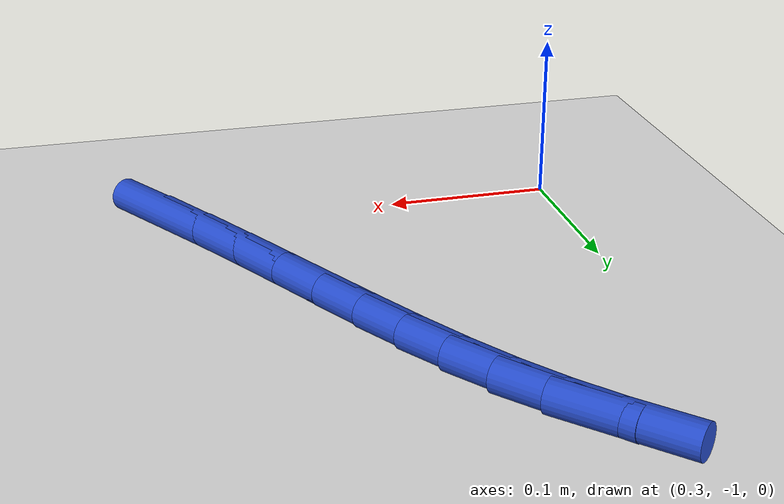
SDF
<sdf version="1.6">
 <world name="default">
  <model name="ground_plane">
   <static>1</static>
   <link name="link">
    <collision name="collision">
     <geometry><plane><normal>0 0 1</normal><size>100 100</size></plane></geometry>
     <surface><friction><ode><mu>100</mu><mu2>50</mu2></ode></friction></surface>
    </collision>
    <visual name="visual">
     <cast_shadows>0</cast_shadows>
     <geometry><plane><normal>0 0 1</normal><size>100 100</size></plane></geometry>
     <material>
      <script><uri>file://media/materials/scripts/gazebo.material</uri><name>Gazebo/WhiteGlow</name></script>
     </material>
    </visual>
   </link>
  </model>
  <model name="line">
   <link name="link_224">
    <pose>0.5436498472602482 -1.0012003150318798 0.01 0 1.57 -1.0277564110859871</pose>
    <collision name="collision">
     <geometry><cylinder><radius>0.01</radius><length>0.08</length></cylinder></geometry>
    </collision>
    <visual name="visual">
     <material>
      <script><name>Gazebo/Blue</name><uri>file://media/materials/scripts/gazebo.material</uri></script>
     </material>
     <geometry><cylinder><radius>0.01</radius><length>0.08</length></cylinder></geometry>
    </visual>
   </link>
   <link name="link_225">
    <pose>0.5237281199900922 -0.9681937912402606 0.01 0 1.57 -1.0497197092764141</pose>
    <collision name="collision">
     <geometry><cylinder><radius>0.01</radius><length>0.08</length></cylinder></geometry>
    </collision>
    <visual name="visual">
     <material>
      <script><name>Gazebo/Blue</name><uri>file://media/materials/scripts/gazebo.material</uri></script>
     </material>
     <geometry><cylinder><radius>0.01</radius><length>0.08</length></cylinder></geometry>
    </visual>
   </link>
   <link name="link_226">
    <pose>0.5046082611129576 -0.9348834842401947 0.01 0 1.57 -1.0638054505738495</pose>
    <collision name="collision">
     <geometry><cylinder><radius>0.01</radius><length>0.08</length></cylinder></geometry>
    </collision>
    <visual name="visual">
     <material>
      <script><name>Gazebo/Blue</name><uri>file://media/materials/scripts/gazebo.material</uri></script>
     </material>
     <geometry><cylinder><radius>0.01</radius><length>0.08</length></cylinder></geometry>
    </visual>
   </link>
   <link name="link_227">
    <pose>0.486288747996458 -0.901899999020813 0.01 0 1.57 -1.0702007520098977</pose>
    <collision name="collision">
     <geometry><cylinder><radius>0.01</radius><length>0.08</length></cylinder></geometry>
    </collision>
    <visual name="visual">
     <material>
      <script><name>Gazebo/Blue</name><uri>file://media/materials/scripts/gazebo.material</uri></script>
     </material>
     <geometry><cylinder><radius>0.01</radius><length>0.08</length></cylinder></geometry>
    </visual>
   </link>
   <link name="link_228">
    <pose>0.468768058008206 -0.8698739405712457 0.01 0 1.57 -1.0682481393169319</pose>
    <collision name="collision">
     <geometry><cylinder><radius>0.01</radius><length>0.08</length></cylinder></geometry>
    </collision>
    <visual name="visual">
     <material>
      <script><name>Gazebo/Blue</name><uri>file://media/materials/scripts/gazebo.material</uri></script>
     </material>
     <geometry><cylinder><radius>0.01</radius><length>0.08</length></cylinder></geometry>
    </visual>
   </link>
   <link name="link_229">
    <pose>0.4520197872733098 -0.839401252360744 0.01 0 1.57 -1.054748420763558</pose>
    <collision name="collision">
     <geometry><cylinder><radius>0.01</radius><length>0.08</length></cylinder></geometry>
    </collision>
    <visual name="visual">
     <material>
      <script><name>Gazebo/Blue</name><uri>file://media/materials/scripts/gazebo.material</uri></script>
     </material>
     <geometry><cylinder><radius>0.01</radius><length>0.08</length></cylinder></geometry>
    </visual>
   </link>
   <link name="link_230">
    <pose>0.43570117797464636 -0.8106371720354838 0.01 0 1.57 -1.026942826215819</pose>
    <collision name="collision">
     <geometry><cylinder><radius>0.01</radius><length>0.08</length></cylinder></geometry>
    </collision>
    <visual name="visual">
     <material>
      <script><name>Gazebo/Blue</name><uri>file://media/materials/scripts/gazebo.material</uri></script>
     </material>
     <geometry><cylinder><radius>0.01</radius><length>0.08</length></cylinder></geometry>
    </visual>
   </link>
   <link name="link_231">
    <pose>0.41925171633842706 -0.7834335861361178 0.01 0 1.57 -0.9842174823862494</pose>
    <collision name="collision">
     <geometry><cylinder><radius>0.01</radius><length>0.08</length></cylinder></geometry>
    </collision>
    <visual name="visual">
     <material>
      <script><name>Gazebo/Blue</name><uri>file://media/materials/scripts/gazebo.material</uri></script>
     </material>
     <geometry><cylinder><radius>0.01</radius><length>0.08</length></cylinder></geometry>
    </visual>
   </link>
   <link name="link_232">
    <pose>0.4021065933186352 -0.7576363975526157 0.01 0 1.57 -0.9273753459625957</pose>
    <collision name="collision">
     <geometry><cylinder><radius>0.01</radius><length>0.08</length></cylinder></geometry>
    </collision>
    <visual name="visual">
     <material>
      <script><name>Gazebo/Blue</name><uri>file://media/materials/scripts/gazebo.material</uri></script>
     </material>
     <geometry><cylinder><radius>0.01</radius><length>0.08</length></cylinder></geometry>
    </visual>
   </link>
   <link name="link_233">
    <pose>0.38370099986925404 -0.7330915091749473 0.01 0 1.57 -0.8615957768258157</pose>
    <collision name="collision">
     <geometry><cylinder><radius>0.01</radius><length>0.08</length></cylinder></geometry>
    </collision>
    <visual name="visual">
     <material>
      <script><name>Gazebo/Blue</name><uri>file://media/materials/scripts/gazebo.material</uri></script>
     </material>
     <geometry><cylinder><radius>0.01</radius><length>0.08</length></cylinder></geometry>
    </visual>
   </link>
   <link name="link_234">
    <pose>0.36357417014303056 -0.709637480206997 0.01 0 1.57 -0.8046199578321611</pose>
    <collision name="collision">
     <geometry><cylinder><radius>0.01</radius><length>0.08</length></cylinder></geometry>
    </collision>
    <visual name="visual">
     <material>
      <script><name>Gazebo/Blue</name><uri>file://media/materials/scripts/gazebo.material</uri></script>
     </material>
     <geometry><cylinder><radius>0.01</radius><length>0.08</length></cylinder></geometry>
    </visual>
   </link>
  </model>
 </world>
</sdf>
